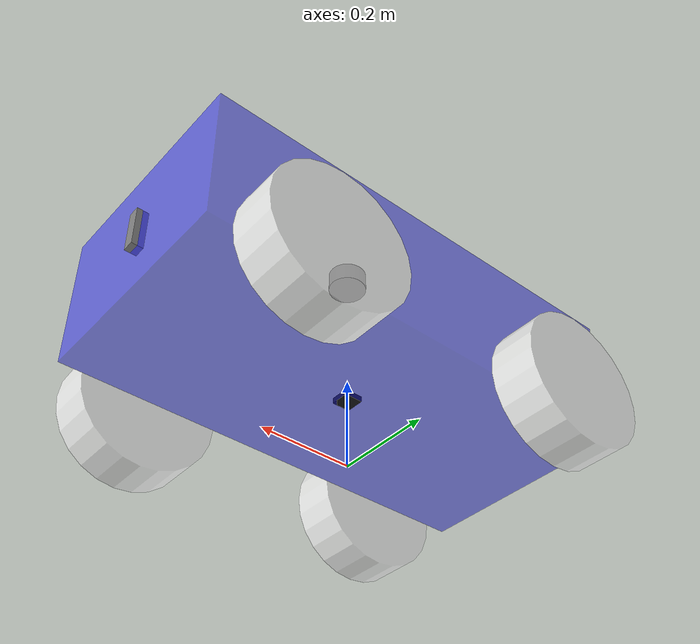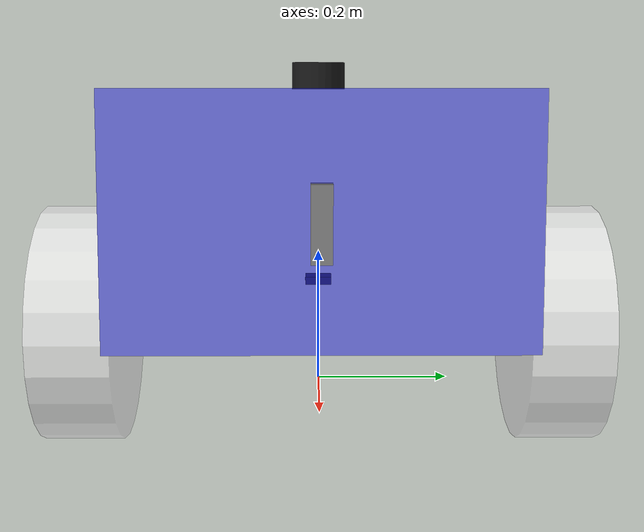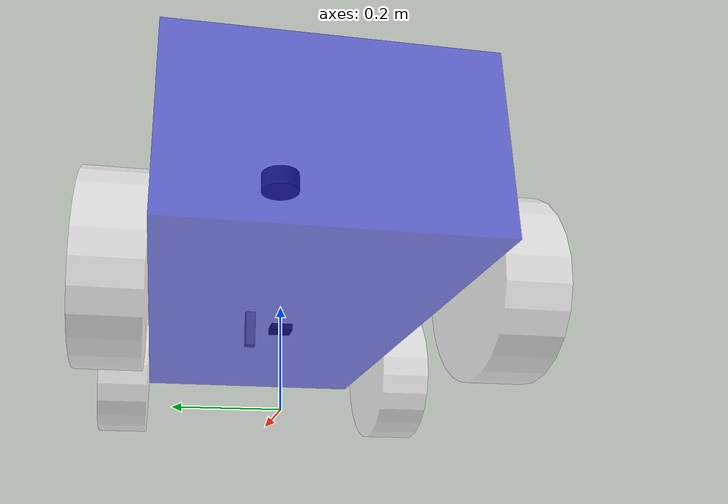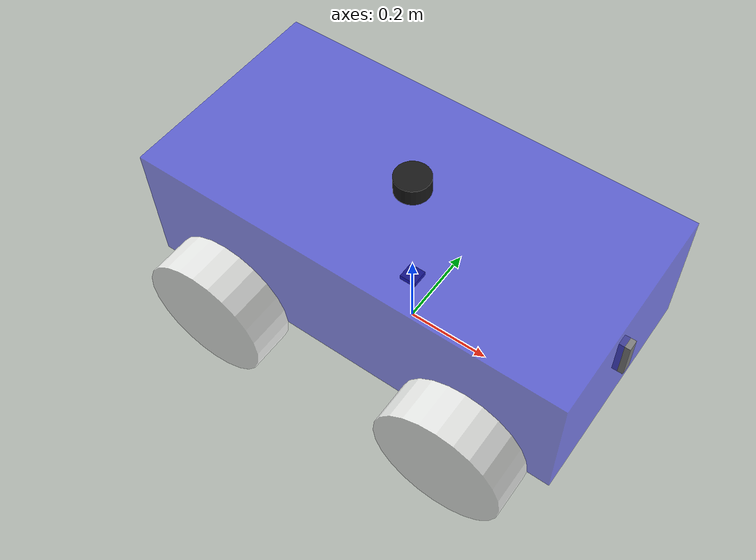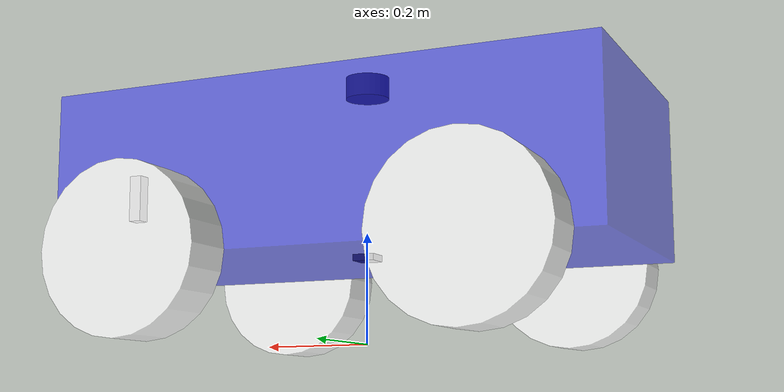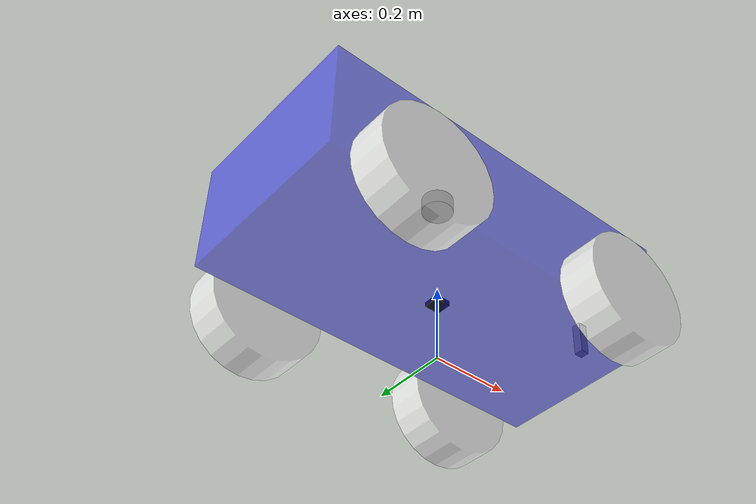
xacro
<?xml version="1.0"?>
<robot xmlns:xacro="http://www.ros.org/wiki/xacro" name="autoVehi">

    <xacro:property name="PI" value="3.1415926535897931"/>

    <xacro:arg name="robot_name" default="autoVehi"/>
    <xacro:arg name="use_gazebo" default="false"/>
    <xacro:arg name="prefix" default=""/>

    <xacro:include filename="$(find av_description)/urdf/autoVehi_core.urdf.xacro" />
    <xacro:autoVehi/>

    <xacro:include filename="$(find av_description)/urdf/sensor/imu.urdf.xacro"/>
    <xacro:imu_sensor
      prefix="$(arg prefix)"
      parent="chassis_link"
      frame_id="imu"
      xyz_offset="0 0 0"
      rpy_offset="0 0 0"
      update_rate="15.0"
      topic_name="imu/data"/>

    <xacro:include filename="$(find av_description)/urdf/sensor/lidar.urdf.xacro"/>
    <xacro:lidar_sensor
      prefix="$(arg prefix)"
      parent="chassis_link"
      frame_id="laser_frame"
      xyz_offset="0.0 0 0.3"
      rpy_offset="0 0 0"
      mesh_xyz_offset="0 0 0.02"
      mesh_rpy_offset="0 0 0"
      topic_name="scan"/>

    <xacro:include filename="$(find av_description)/urdf/sensor/camera.urdf.xacro"/>
    <xacro:camera
      prefix="$(arg prefix)"
      camera_name="cam_1"
      xyz_offset="0.5 0 0.15"
      rpy_offset="0 0 0"/>

    <xacro:include filename="$(find av_description)/urdf/control/gazebo_sim_ros2_control.urdf.xacro" />
    <xacro:load_gazebo_sim_ros2_control_plugin
        robot_name="$(arg robot_name)"
        use_gazebo="$(arg use_gazebo)"/>

    <xacro:include filename="$(find av_description)/urdf/control/autoVehi_ros2_control.urdf.xacro" />
    <xacro:av_ros2_control
        use_gazebo="$(arg use_gazebo)"/>

</robot>

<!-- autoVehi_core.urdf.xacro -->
<robot xmlns:xacro="http://www.ros.org/wiki/xacro" name="autoVehi">

    <xacro:property name="max_effort" value="300"/>
    <xacro:property name="joint_damping" value="0.5"/>

    <xacro:macro name="autoVehi" params="">

        <material name="white">
            <color rgba=" 1 1 1 0.5"/>
        </material>

        <material name="blue">
            <color rgba="0.1 0.1 1 0.5"/>
        </material>

        <material name="red">
            <color rgba="1 0.1 0.1 0.5"/>
        </material>

        <material name="green">
            <color rgba="0.1 1 0.1 0.8"/>
        </material>

        <material name="black">
            <color rgba="1 1 1 0.8"/>
        </material>

        <link name="base_link"></link>

        <joint name="chassis_joint" type="fixed">
            <parent link="base_link"/>
            <child link="chassis_link"/>
            <origin xyz="0 0 0.15"/>
        </joint>

        <link name="chassis_link">
            <inertial>
                <origin xyz="0 0 0.15" rpy="0 0 0"/>
                <mass value="20"/>
                <inertia
                    ixx="0.566" ixy="0" ixz="0"
                    iyy="1.816" iyz="0"
                    izz="2.083"/>
            </inertial>

            <visual>
                <origin xyz="0 0 0.15" rpy="0 0 0"/>
                <geometry>
                    <box size="1 0.5 0.3"/>
                </geometry>
                <material name="blue"/>
            </visual>

            <collision>
                <origin xyz="0 0 0.15" rpy="0 0 0"/>
                <geometry>
                    <box size="1 0.5 0.3"/>
                </geometry>
            </collision>
        </link>
        <!--/////////////// wheel_left_top////////////-->
        <joint name="wheel_left_top_joint" type="continuous">
            <parent link="chassis_link"/>
            <child link="wheel_left_top" />
            <origin xyz="0.3 0.25 0" rpy="${-PI/2} 0 0"/>
            <axis xyz="0 0 1"/>
            <limit effort="${max_effort}" velocity="${PI}"/>
            <dynamics damping="${joint_damping}"/>
        </joint>

        <link name="wheel_left_top">
            <inertial>
                <origin xyz="0 0 0.05" rpy="0 0 0"/>
                <mass value="1"/>
                <inertia
                    ixx="0.006" ixy="0" ixz="0"
                    iyy="0.006" iyz="0"
                    izz="0.011"/>
            </inertial>

            <visual>
                <origin xyz="0 0 0.05" rpy="0 0 0"/>
                <geometry>
                    <cylinder radius="0.15" length="0.1"/>
                </geometry>
                <material name="black"/>
            </visual>

            <collision>
                <origin xyz="0 0 0.05" rpy="0 0 0"/>
                <geometry>
                    <cylinder radius="0.15" length="0.1"/>
                </geometry>
            </collision>
        </link>

        <!--/////////////// wheel_left_bot////////////-->
        <joint name="wheel_left_bot_joint" type="continuous">
            <parent link="chassis_link"/>
            <child link="wheel_left_bot" />
            <origin xyz="-0.3 0.25 0" rpy="${-PI/2} 0 0"/>
            <axis xyz="0 0 1"/>
            <limit effort="${max_effort}" velocity="${PI}"/>
            <dynamics damping="${joint_damping}"/>
        </joint>

        <link name="wheel_left_bot">
            <inertial>
                <origin xyz="0 0 0.05" rpy="0 0 0"/>
                <mass value="1"/>
                <inertia
                    ixx="0.006" ixy="0" ixz="0"
                    iyy="0.006" iyz="0"
                    izz="0.011"/>
            </inertial>

            <visual>
                <origin xyz="0 0 0.05" rpy="0 0 0"/>
                <geometry>
                    <cylinder radius="0.15" length="0.1"/>
                </geometry>
                <material name="black"/>
            </visual>

            <collision>
                <origin xyz="0 0 0.05" rpy="0 0 0"/>
                <geometry>
                    <cylinder radius="0.15" length="0.1"/>
                </geometry>
            </collision>
        </link>

        <!--/////////////// wheel_right_top////////////-->
        <joint name="wheel_right_top_joint" type="continuous">
            <parent link="chassis_link"/>
            <child link="wheel_right_top" />
            <origin xyz="0.3 -0.25 0" rpy="${PI/2} 0 0"/>
            <axis xyz="0 0 -1"/>
            <limit effort="${max_effort}" velocity="${PI}"/>
            <dynamics damping="${joint_damping}"/>
        </joint>

        <link name="wheel_right_top">
            <inertial>
                <origin xyz="0 0 0.05" rpy="0 0 0"/>
                <mass value="1"/>
                <inertia
                    ixx="0.006" ixy="0" ixz="0"
                    iyy="0.006" iyz="0"
                    izz="0.011"/>
            </inertial>

            <visual>
                <origin xyz="0 0 0.05" rpy="0 0 0"/>
                <geometry>
                    <cylinder radius="0.15" length="0.1"/>
                </geometry>
                <material name="black"/>
            </visual>

            <collision>
                <origin xyz="0 0 0.05" rpy="0 0 0"/>
                <geometry>
                    <cylinder radius="0.15" length="0.1"/>
                </geometry>
            </collision>
        </link>

        <!--/////////////// wheel_right_bot////////////-->
        <joint name="wheel_right_bot_joint" type="continuous">
            <parent link="chassis_link"/>
            <child link="wheel_right_bot" />
            <origin xyz="-0.3 -0.25 0" rpy="${PI/2} 0 0"/>
            <axis xyz="0 0 -1"/>
            <limit effort="${max_effort}" velocity="${PI}"/>
            <dynamics damping="${joint_damping}"/>
        </joint>

        <link name="wheel_right_bot">
            <inertial>
                <origin xyz="0 0 0.05" rpy="0 0 0"/>
                <mass value="1"/>
                <inertia
                    ixx="0.006" ixy="0" ixz="0"
                    iyy="0.006" iyz="0"
                    izz="0.011"/>
            </inertial>

            <visual>
                <origin xyz="0 0 0.05" rpy="0 0 0"/>
                <geometry>
                    <cylinder radius="0.15" length="0.1"/>
                </geometry>
                <material name="black"/>
            </visual>

            <collision>
                <origin xyz="0 0 0.05" rpy="0 0 0"/>
                <geometry>
                    <cylinder radius="0.15" length="0.1"/>
                </geometry>
            </collision>
        </link>

        <gazebo reference="wheel_left_top">
            <collision>
                <surface>
                    <friction>
                        <ode>
                            <mu>0.0</mu>
                            <mu2>0.0</mu2>
                        </ode>
                    </friction>
                </surface>
            </collision>
        </gazebo>

        <gazebo reference="wheel_left_bot">
            <collision>
                <surface>
                    <friction>
                        <ode>
                            <mu>1.0</mu>
                            <mu2>1.0</mu2>
                        </ode>
                    </friction>
                </surface>
            </collision>
        </gazebo>

        <gazebo reference="wheel_right_top">
            <collision>
                <surface>
                    <friction>
                        <ode>
                            <mu>0.0</mu>
                            <mu2>0.0</mu2>
                        </ode>
                    </friction>
                </surface>
            </collision>
        </gazebo>

        <gazebo reference="wheel_right_bot">
            <collision>
                <surface>
                    <friction>
                        <ode>
                            <mu>1.0</mu>
                            <mu2>1.0</mu2>
                        </ode>
                    </friction>
                </surface>
            </collision>
        </gazebo>

    </xacro:macro>

</robot>

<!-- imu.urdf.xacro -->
<robot xmlns:xacro="http://www.ros.org/wiki/xacro">
    <xacro:property name="M_PI" value="3.1415926535897931" />

    <xacro:macro name="imu_sensor" params="
        prefix:=''
        parent:='chassis_link'
        frame_id:='imu'
        xyz_offset:='0 0 0'
        rpy_offset:='0 0 0'
        inertial_xyz_offset:='0 0 0'
        inertial_rpy_offset:='0 0 0'
        mass:=0.031
        length:=0.04
        width:=0.04
        height:=0.012
        material_name:='imu_black'
        material_color:='0.1 0.1 0.1 1'
        gazebo_material_ambient:='0.1 0.1 0.1 1'
        gazebo_material_diffuse:='0.1 0.1 0.1 1'
        gazebo_material_specular:='0.1 0.1 0.1 1'
        update_rate:='15.0'
        topic_name:='imu/data'
        always_on:=true
        visualize:=false">

        <xacro:property name="ixx" value="${(mass/12.0) * (height*height + width*width)}" />
        <xacro:property name="iyy" value="${(mass/12.0) * (length*length + height*height)}" />
        <xacro:property name="izz" value="${(mass/12.0) * (length*length + width*width)}" />

        <link name="${prefix}${frame_id}_link">
            <visual>
                <origin xyz="0 0 0.006" rpy="0 0 0"/>
                <geometry>
                    <box size="${length} ${width} ${height}"/>
                </geometry>
                <material name="${material_name}">
                    <color rgba="${material_color}"/>
                </material>
            </visual>

            <inertial>
                <mass value="${mass}" />
                <origin xyz="${inertial_xyz_offset}" rpy="${inertial_rpy_offset}"/>
                <inertia
                    ixx="${ixx}"
                    ixy="0.0"
                    ixz="0.0"
                    iyy="${iyy}"
                    iyz="0.0"
                    izz="${izz}" />
            </inertial>
        </link>

        <joint name="${prefix}${frame_id}_joint" type="fixed">
            <parent link="${prefix}${parent}"/>
            <child link="${prefix}${frame_id}_link" />
            <origin xyz="${xyz_offset}" rpy="${rpy_offset}"/>
        </joint>

        <gazebo reference="${prefix}${frame_id}_link">
            <material>
                <ambient>${gazebo_material_ambient}</ambient>
                <diffuse>${gazebo_material_diffuse}</diffuse>
                <specular>${gazebo_material_specular}</specular>
            </material>
            <sensor name="${prefix}imu_sensor" type="imu">
                <topic>${topic_name}</topic>
                <update_rate>${update_rate}</update_rate>
                <always_on>${always_on}</always_on>
                <visualize>${visualize}</visualize>
                <gz_frame_id>${prefix}${frame_id}_link</gz_frame_id>
            </sensor>
        </gazebo>
    </xacro:macro>
</robot>

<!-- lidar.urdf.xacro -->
<robot xmlns:xacro="http://www.ros.org/wiki/xacro">
  <xacro:property name="M_PI" value="3.1415926535897931" />

  <xacro:macro name="lidar_sensor" params="
    prefix:=''
    parent:='chassis_link'
    frame_id:='laser_frame'
    xyz_offset:='0.5 0 0.3'
    rpy_offset:='0 0 0'
    mesh_xyz_offset:='0 0 0.02'
    mesh_rpy_offset:='0 0 0'
    mesh_scale:='0.001 0.001 0.001'
    collision_xyz_offset:='0 0 0.02'
    collision_rpy_offset:='0 0 0'
    inertial_xyz_offset:='0 0 0'
    inertial_rpy_offset:='0 0 0'
    lidar_width:=0.08
    lidar_height:=0.04
    mass:=0.185
    material_name:='rplidar_black'
    material_color:='0.1 0.1 0.1 1'
    gazebo_material_ambient:='0.1 0.1 0.1 1'
    gazebo_material_diffuse:='0.1 0.1 0.1 1'
    gazebo_material_specular:='0.1 0.1 0.1 1'
    update_rate:=10
    ray_count:=541
    min_angle:='-2.35619'
    max_angle:='2.35619'
    min_range:='0.50'
    max_range:='20.0'
    range_resolution:='0.013'
    topic_name:='scan'
    always_on:=true
    visualize:=false">

    <xacro:property name="radius" value="${lidar_width/2}" />
    <xacro:property name="ixx_iyy" value="${(mass/12) * (3 * radius * radius + lidar_height * lidar_height)}" />
    <xacro:property name="izz" value="${(mass/2) * (radius * radius)}" />

    <link name="${prefix}${frame_id}">
      <visual>
        <origin xyz="${mesh_xyz_offset}" rpy="${mesh_rpy_offset}"/>
        <geometry>
            <cylinder radius="${lidar_width/2}" length="${lidar_height}"/>
        </geometry>
        <material name="${material_name}">
          <color rgba="${material_color}"/>
        </material>
      </visual>

      <collision>
        <origin xyz="${collision_xyz_offset}" rpy="${collision_rpy_offset}"/>
        <geometry>
            <cylinder radius="${lidar_width/2}" length="${lidar_height}"/>
        </geometry>
      </collision>

      <inertial>
        <mass value="${mass}" />
        <origin xyz="${inertial_xyz_offset}" rpy="${inertial_rpy_offset}"/>
        <inertia
          ixx="${ixx_iyy}"
          ixy="0.0"
          ixz="0.0"
          iyy="${ixx_iyy}"
          iyz="0.0"
          izz="${izz}" />
      </inertial>
    </link>

    <joint name="${prefix}${frame_id}_joint" type="fixed">
      <parent link="${prefix}${parent}"/>
      <child link="${prefix}${frame_id}" />
      <origin xyz="${xyz_offset}" rpy="${rpy_offset}"/>
    </joint>

    <gazebo reference="${prefix}${frame_id}">
      <material>
        <ambient>${gazebo_material_ambient}</ambient>
        <diffuse>${gazebo_material_diffuse}</diffuse>
        <specular>${gazebo_material_specular}</specular>
      </material>
      <sensor name="${prefix}lidar_sensor" type="gpu_lidar">
        <topic>${topic_name}</topic>
        <update_rate>${update_rate}</update_rate>
        <always_on>${always_on}</always_on>
        <visualize>${visualize}</visualize>
        <ray>
          <scan>
            <horizontal>
              <samples>${ray_count}</samples>
              <resolution>1</resolution>
              <min_angle>${min_angle}</min_angle>
              <max_angle>${max_angle}</max_angle>
            </horizontal>
            <vertical>
              <samples>1</samples>
              <resolution>1</resolution>
              <min_angle>0</min_angle>
              <max_angle>0</max_angle>
            </vertical>
          </scan>
          <range>
            <min>${min_range}</min>
            <max>${max_range}</max>
            <resolution>${range_resolution}</resolution>
          </range>
        </ray>
        <gz_frame_id>${prefix}${frame_id}</gz_frame_id>
      </sensor>
    </gazebo>
  </xacro:macro>
</robot>

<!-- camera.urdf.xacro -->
<robot xmlns:xacro="http://www.ros.org/wiki/xacro">

  <xacro:property name="M_PI" value="3.1415926535897931" />

  <xacro:macro name="camera" params="
    prefix:=''
    camera_name:='cam_1'
    parent:='chassis_link'
    xyz_offset:='0.5 0 0.15'
    rpy_offset:='0 0 0'
    mesh_xyz_offset:='0 0 0'
    mesh_rpy_offset:='${M_PI/2} 0.0 ${M_PI/2}'
    collision_xyz_offset:='0 0 0'
    collision_rpy_offset:='0 0 0'
    inertial_xyz_offset:='0 0 0'
    inertial_rpy_offset:='0 0 0'
    optical_xyz_offset:='0 0 0'
    optical_rpy_offset:='${-M_PI/2} 0 ${-M_PI/2}'
    color_xyz_offset:='0 0.015 0'
    color_rpy_offset:='0 0 0'
    cam_width:=0.090
    cam_height:=0.025
    cam_depth:=0.02505
    mass:=0.072
    ixx:=0.003881243
    ixy:=0.0
    ixz:=0.0
    iyy:=0.000498940
    iyz:=0.0
    izz:=0.003879257
    material_name:='aluminum'
    material_color:='0.5 0.5 0.5 1'
    horizontal_fov:=1.5184
    image_width:=640
    image_height:=640
    clip_near:=0.05
    clip_far:=10
    update_rate:=10
    always_on:=1
    visualize:=true">

    <link name="${prefix}${camera_name}_link">
      <visual>
        <origin xyz="${mesh_xyz_offset}" rpy="${mesh_rpy_offset}"/>
        <geometry>
            <box size="${cam_depth} ${cam_width} ${cam_height}"/>
        </geometry>
        <material name="${material_name}">
          <color rgba="${material_color}"/>
        </material>
      </visual>
      <collision>
        <origin xyz="${collision_xyz_offset}" rpy="${collision_rpy_offset}"/>
        <geometry>
            <box size="${cam_depth} ${cam_width} ${cam_height}"/>
        </geometry>
      </collision>
      <inertial>
        <mass value="${mass}" />
        <origin xyz="${inertial_xyz_offset}" rpy="${inertial_rpy_offset}"/>
        <inertia ixx="${ixx}" ixy="${ixy}" ixz="${ixz}"
                 iyy="${iyy}" iyz="${iyz}" izz="${izz}" />
      </inertial>
    </link>

    <joint name="${prefix}${camera_name}_joint" type="fixed">
      <parent link="${prefix}${parent}"/>
      <child link="${prefix}${camera_name}_link" />
      <origin xyz="${xyz_offset}" rpy="${rpy_offset}"/>
    </joint>

    <joint name="${prefix}${camera_name}_color_joint" type="fixed">
      <origin xyz="${color_xyz_offset}" rpy="${color_rpy_offset}" />
      <parent link="${prefix}${camera_name}_link" />
      <child link="${prefix}${camera_name}_color_frame" />
    </joint>
    <link name="${prefix}${camera_name}_color_frame"/>

    <joint name="${prefix}${camera_name}_color_optical_joint" type="fixed">
      <origin xyz="${optical_xyz_offset}" rpy="${optical_rpy_offset}" />
      <parent link="${prefix}${camera_name}_color_frame" />
      <child link="${prefix}${camera_name}_color_optical_frame" />
    </joint>
    <link name="${prefix}${camera_name}_color_optical_frame"/>

    <gazebo reference="${prefix}${camera_name}_link">
      <sensor name="${prefix}${camera_name}" type="camera">
        <camera>
          <horizontal_fov>${horizontal_fov}</horizontal_fov>
          <image>
            <width>${image_width}</width>
            <height>${image_height}</height>
            <format>R8G8B8</format>
          </image>
          <clip>
            <near>${clip_near}</near>
            <far>${clip_far}</far>
          </clip>
        </camera>
        <always_on>${always_on}</always_on>
        <gz_frame_id>${prefix}${camera_name}_color_optical_frame</gz_frame_id>
        <topic>${camera_name}/image</topic>
        <update_rate>${update_rate}</update_rate>
        <visualize>${visualize}</visualize>
      </sensor>
    </gazebo>

  </xacro:macro>
</robot>
